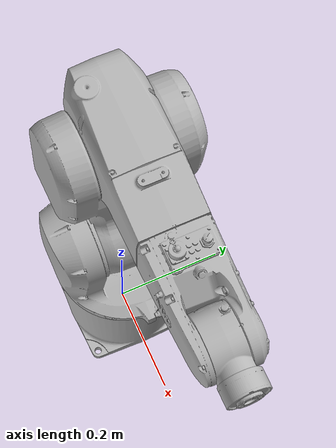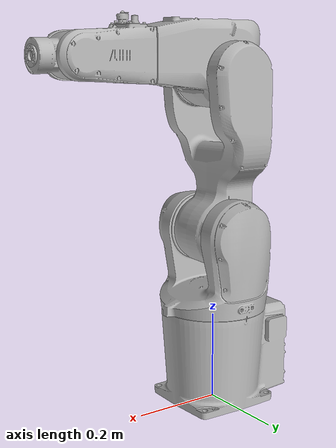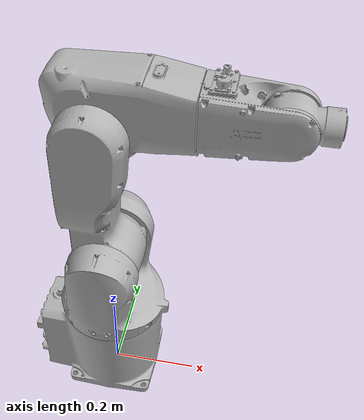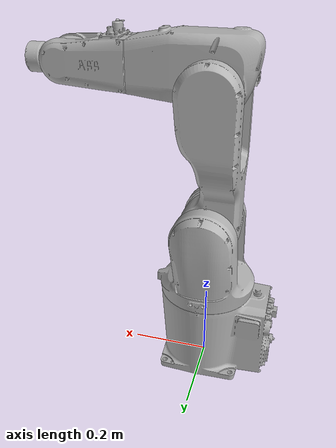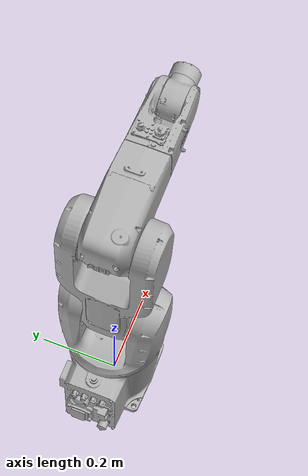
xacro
<?xml version="1.0" ?>
<robot name="IRB1200H_7-70-STD" xmlns:xacro="http://www.ros.org/wiki/xacro">

<xacro:include filename="$(find IRB1200H_7-70-STD_description)/urdf/materials.xacro" />
<xacro:include filename="$(find IRB1200H_7-70-STD_description)/urdf/IRB1200H_7-70-STD.trans" />
<xacro:include filename="$(find IRB1200H_7-70-STD_description)/urdf/IRB1200H_7-70-STD.gazebo" />
<link name="base_link">
  <inertial>
    <origin xyz="-0.02363502115054783 0.0004753411198600945 0.11218944380427573" rpy="0 0 0"/>
    <mass value="83.56281675930377"/>
    <inertia ixx="0.579272" iyy="0.781174" izz="0.698162" ixy="0.004319" iyz="-0.001283" ixz="-0.00506"/>
  </inertial>
  <visual>
    <origin xyz="0 0 0" rpy="0 0 0"/>
    <geometry>
      <mesh filename="package://IRB1200H_7-70-STD_description/meshes/base_link.stl" scale="0.001 0.001 0.001"/>
    </geometry>
    <material name="silver"/>
  </visual>
  <collision>
    <origin xyz="0 0 0" rpy="0 0 0"/>
    <geometry>
      <mesh filename="package://IRB1200H_7-70-STD_description/meshes/base_link.stl" scale="0.001 0.001 0.001"/>
    </geometry>
  </collision>
</link>

<link name="link_1_1">
  <inertial>
    <origin xyz="-0.0032574143563410597 0.0004228928818921135 0.10229437430585911" rpy="0 0 0"/>
    <mass value="47.62183211112662"/>
    <inertia ixx="0.595344" iyy="0.377408" izz="0.433985" ixy="-0.000147" iyz="0.000705" ixz="-0.004382"/>
  </inertial>
  <visual>
    <origin xyz="-0.0 -0.0 -0.219" rpy="0 0 0"/>
    <geometry>
      <mesh filename="package://IRB1200H_7-70-STD_description/meshes/link_1_1.stl" scale="0.001 0.001 0.001"/>
    </geometry>
    <material name="silver"/>
  </visual>
  <collision>
    <origin xyz="-0.0 -0.0 -0.219" rpy="0 0 0"/>
    <geometry>
      <mesh filename="package://IRB1200H_7-70-STD_description/meshes/link_1_1.stl" scale="0.001 0.001 0.001"/>
    </geometry>
  </collision>
</link>

<link name="link_2_1">
  <inertial>
    <origin xyz="-0.009944347609699757 0.06037825705225541 0.16624234768686852" rpy="0 0 0"/>
    <mass value="54.93093636945645"/>
    <inertia ixx="1.322479" iyy="1.146829" izz="0.3246" ixy="0.000481" iyz="6e-05" ixz="-0.006609"/>
  </inertial>
  <visual>
    <origin xyz="-0.0 0.0615 -0.3991" rpy="0 0 0"/>
    <geometry>
      <mesh filename="package://IRB1200H_7-70-STD_description/meshes/link_2_1.stl" scale="0.001 0.001 0.001"/>
    </geometry>
    <material name="silver"/>
  </visual>
  <collision>
    <origin xyz="-0.0 0.0615 -0.3991" rpy="0 0 0"/>
    <geometry>
      <mesh filename="package://IRB1200H_7-70-STD_description/meshes/link_2_1.stl" scale="0.001 0.001 0.001"/>
    </geometry>
  </collision>
</link>

<link name="link_3_1">
  <inertial>
    <origin xyz="0.04273309398912055 0.06101103306372527 0.035299755142302436" rpy="0 0 0"/>
    <mass value="38.854634298936446"/>
    <inertia ixx="0.127707" iyy="0.302841" izz="0.263122" ixy="6.1e-05" iyz="-8.6e-05" ixz="-0.012088"/>
  </inertial>
  <visual>
    <origin xyz="-0.0 0.061 -0.7491" rpy="0 0 0"/>
    <geometry>
      <mesh filename="package://IRB1200H_7-70-STD_description/meshes/link_3_1.stl" scale="0.001 0.001 0.001"/>
    </geometry>
    <material name="silver"/>
  </visual>
  <collision>
    <origin xyz="-0.0 0.061 -0.7491" rpy="0 0 0"/>
    <geometry>
      <mesh filename="package://IRB1200H_7-70-STD_description/meshes/link_3_1.stl" scale="0.001 0.001 0.001"/>
    </geometry>
  </collision>
</link>

<link name="link_4_1">
  <inertial>
    <origin xyz="0.09376827741240087 0.0016293023500022993 0.0010874229942521296" rpy="0 0 0"/>
    <mass value="14.103514853516494"/>
    <inertia ixx="0.029406" iyy="0.057716" izz="0.061956" ixy="-0.001377" iyz="-1.2e-05" ixz="0.000468"/>
  </inertial>
  <visual>
    <origin xyz="-0.1655 0.00012 -0.791099" rpy="0 0 0"/>
    <geometry>
      <mesh filename="package://IRB1200H_7-70-STD_description/meshes/link_4_1.stl" scale="0.001 0.001 0.001"/>
    </geometry>
    <material name="silver"/>
  </visual>
  <collision>
    <origin xyz="-0.1655 0.00012 -0.791099" rpy="0 0 0"/>
    <geometry>
      <mesh filename="package://IRB1200H_7-70-STD_description/meshes/link_4_1.stl" scale="0.001 0.001 0.001"/>
    </geometry>
  </collision>
</link>

<link name="link_5_1">
  <inertial>
    <origin xyz="0.013848200109173203 -0.027811016104562186 5.4563116480554896e-05" rpy="0 0 0"/>
    <mass value="4.542326346976594"/>
    <inertia ixx="0.003479" iyy="0.008928" izz="0.007834" ixy="-0.000177" iyz="-4e-06" ixz="1.2e-05"/>
  </inertial>
  <visual>
    <origin xyz="-0.351 -0.025379 -0.7911" rpy="0 0 0"/>
    <geometry>
      <mesh filename="package://IRB1200H_7-70-STD_description/meshes/link_5_1.stl" scale="0.001 0.001 0.001"/>
    </geometry>
    <material name="silver"/>
  </visual>
  <collision>
    <origin xyz="-0.351 -0.025379 -0.7911" rpy="0 0 0"/>
    <geometry>
      <mesh filename="package://IRB1200H_7-70-STD_description/meshes/link_5_1.stl" scale="0.001 0.001 0.001"/>
    </geometry>
  </collision>
</link>

<link name="link_6_1">
  <inertial>
    <origin xyz="0.002845591460718222 3.5148072682996196e-07 -0.00036679995380684005" rpy="0 0 0"/>
    <mass value="0.036681809664465305"/>
    <inertia ixx="1e-05" iyy="5e-06" izz="5e-06" ixy="0.0" iyz="-0.0" ixz="-0.0"/>
  </inertial>
  <visual>
    <origin xyz="-0.4365 4e-06 -0.7911" rpy="0 0 0"/>
    <geometry>
      <mesh filename="package://IRB1200H_7-70-STD_description/meshes/link_6_1.stl" scale="0.001 0.001 0.001"/>
    </geometry>
    <material name="silver"/>
  </visual>
  <collision>
    <origin xyz="-0.4365 4e-06 -0.7911" rpy="0 0 0"/>
    <geometry>
      <mesh filename="package://IRB1200H_7-70-STD_description/meshes/link_6_1.stl" scale="0.001 0.001 0.001"/>
    </geometry>
  </collision>
</link>

<joint name="j1" type="continuous">
  <origin xyz="0.0 0.0 0.219" rpy="0 0 0"/>
  <parent link="base_link"/>
  <child link="link_1_1"/>
  <axis xyz="0.0 0.0 1.0"/>
</joint>

<joint name="j2" type="continuous">
  <origin xyz="0.0 -0.0615 0.1801" rpy="0 0 0"/>
  <parent link="link_1_1"/>
  <child link="link_2_1"/>
  <axis xyz="0.0 -1.0 0.0"/>
</joint>

<joint name="j3" type="continuous">
  <origin xyz="0.0 0.0005 0.35" rpy="0 0 0"/>
  <parent link="link_2_1"/>
  <child link="link_3_1"/>
  <axis xyz="0.0 -1.0 0.0"/>
</joint>

<joint name="j4" type="continuous">
  <origin xyz="0.1655 0.06088 0.041999" rpy="0 0 0"/>
  <parent link="link_3_1"/>
  <child link="link_4_1"/>
  <axis xyz="-1.0 0.0 1.7e-05"/>
</joint>

<joint name="j5" type="continuous">
  <origin xyz="0.1855 0.025499 1e-06" rpy="0 0 0"/>
  <parent link="link_4_1"/>
  <child link="link_5_1"/>
  <axis xyz="0.0 -1.0 0.0"/>
</joint>

<joint name="j6" type="continuous">
  <origin xyz="0.0855 -0.025383 0.0" rpy="0 0 0"/>
  <parent link="link_5_1"/>
  <child link="link_6_1"/>
  <axis xyz="1.0 0.0 0.0"/>
</joint>

</robot>

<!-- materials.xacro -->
<robot name="IRB1200H_7-70-STD" xmlns:xacro="http://www.ros.org/wiki/xacro" >

<material name="silver">
  <color rgba="0.700 0.700 0.700 1.000"/>
</material>

</robot>

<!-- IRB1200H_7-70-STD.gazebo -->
<robot name="IRB1200H_7-70-STD" xmlns:xacro="http://www.ros.org/wiki/xacro" >

<xacro:property name="body_color" value="Gazebo/Silver" />

<gazebo>
  <plugin name="control" filename="libgazebo_ros_control.so"/>
</gazebo>
<gazebo reference="base_link">
  <material>${body_color}</material>
  <mu1>0.2</mu1>
  <mu2>0.2</mu2>
  <selfCollide>true</selfCollide>
  <gravity>true</gravity>
</gazebo>

<gazebo reference="link_1_1">
  <material>${body_color}</material>
  <mu1>0.2</mu1>
  <mu2>0.2</mu2>
  <selfCollide>true</selfCollide>
</gazebo>

<gazebo reference="link_2_1">
  <material>${body_color}</material>
  <mu1>0.2</mu1>
  <mu2>0.2</mu2>
  <selfCollide>true</selfCollide>
</gazebo>

<gazebo reference="link_3_1">
  <material>${body_color}</material>
  <mu1>0.2</mu1>
  <mu2>0.2</mu2>
  <selfCollide>true</selfCollide>
</gazebo>

<gazebo reference="link_4_1">
  <material>${body_color}</material>
  <mu1>0.2</mu1>
  <mu2>0.2</mu2>
  <selfCollide>true</selfCollide>
</gazebo>

<gazebo reference="link_5_1">
  <material>${body_color}</material>
  <mu1>0.2</mu1>
  <mu2>0.2</mu2>
  <selfCollide>true</selfCollide>
</gazebo>

<gazebo reference="link_6_1">
  <material>${body_color}</material>
  <mu1>0.2</mu1>
  <mu2>0.2</mu2>
  <selfCollide>true</selfCollide>
</gazebo>

</robot>
